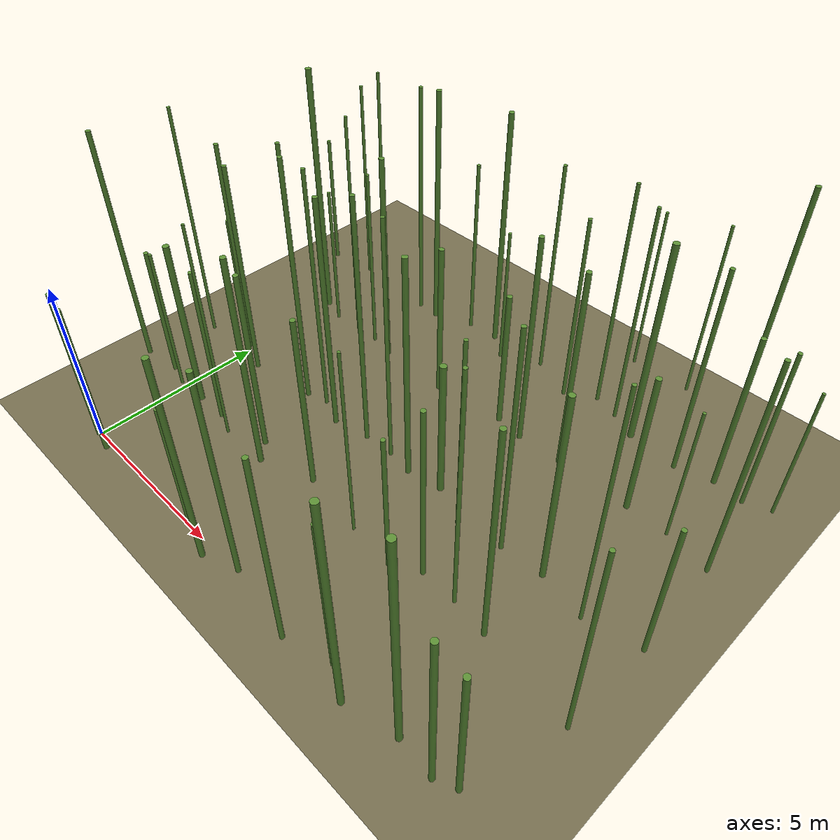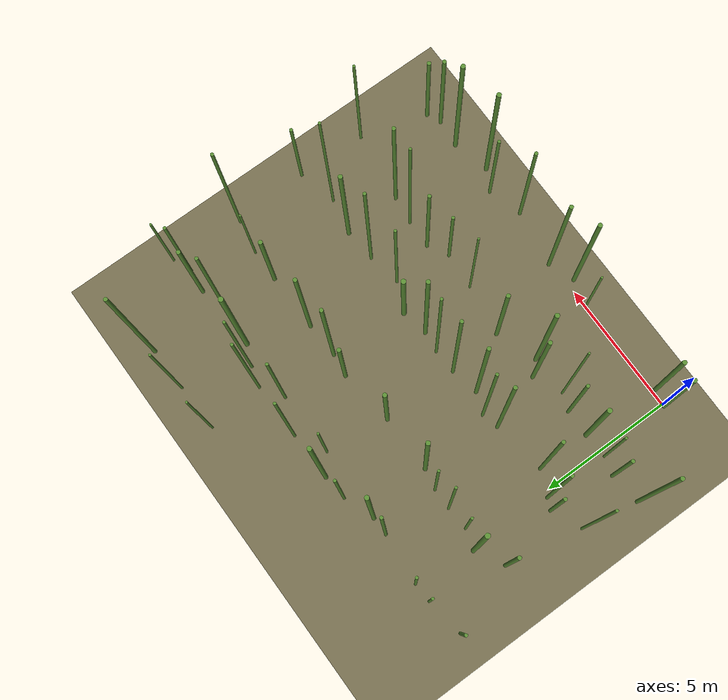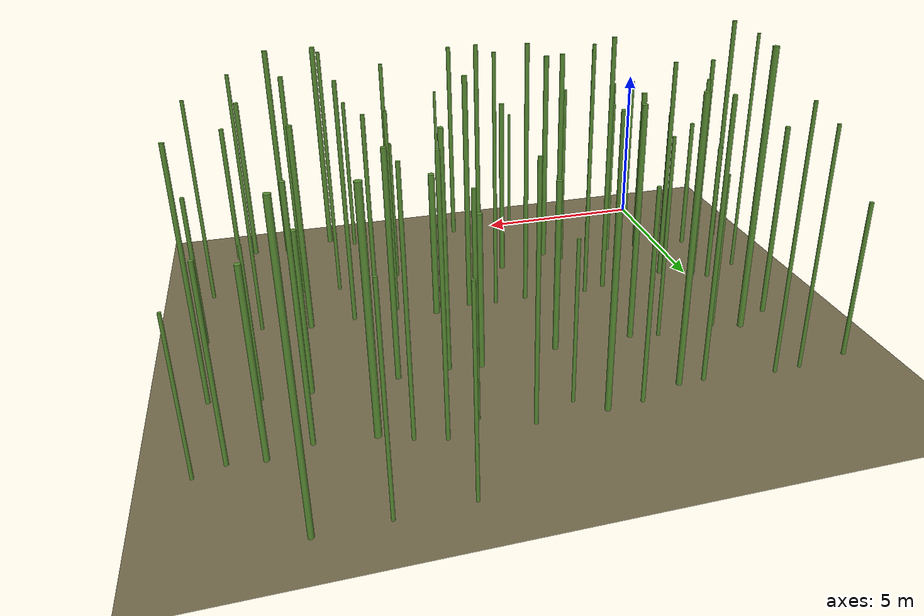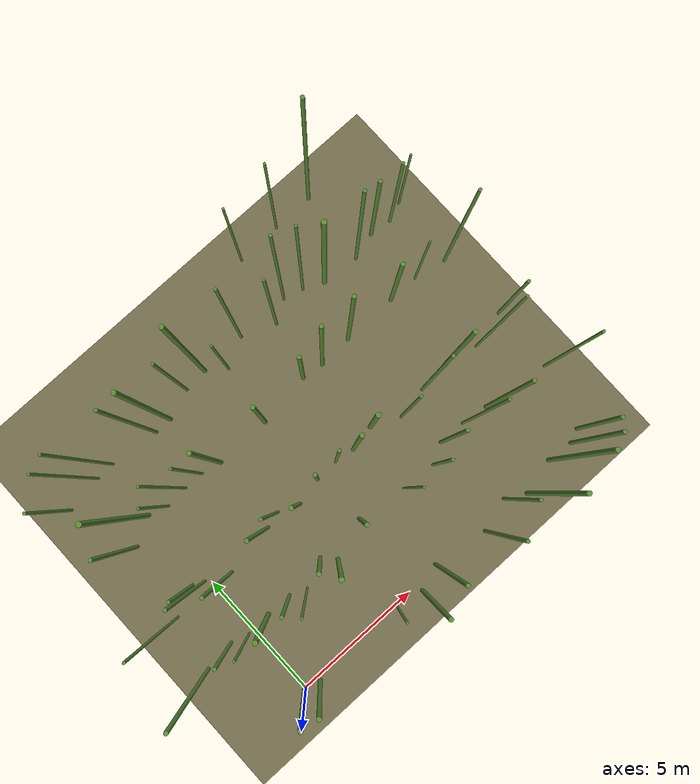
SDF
<sdf version="1.9">
 <world name="bamboo_field">
  <model name="ground_plane">
   <static>true</static>
   <link name="link">
    <collision name="collision">
     <geometry><plane><normal>0 0 1</normal><size>80.0 80.0</size></plane></geometry>
    </collision>
    <visual name="visual">
     <geometry><plane><normal>0 0 1</normal><size>80.0 80.0</size></plane></geometry>
     <material><diffuse>0.45 0.42 0.30 1</diffuse></material>
    </visual>
   </link>
  </model>
  <model name="bamboo_1041">
   <static>true</static>
   <pose>-0.07325884887953937 -0.017494516571116392 2.418458960668999 0 0 0</pose>
   <link name="link">
    <collision name="collision">
     <geometry>
      <cylinder><radius>0.08295060151324246</radius><length>4.836917921337998</length></cylinder>
     </geometry>
    </collision>
    <visual name="visual">
     <geometry>
      <cylinder><radius>0.08295060151324246</radius><length>4.836917921337998</length></cylinder>
     </geometry>
     <material><diffuse>0.35 0.55 0.20 1</diffuse><specular>0.1 0.1 0.1 1</specular></material>
    </visual>
   </link>
  </model>
  <model name="bamboo_1042">
   <static>true</static>
   <pose>0.5576627941543283 -0.14791450598957973 2.3818289054348103 0 0 0</pose>
   <link name="link">
    <collision name="collision">
     <geometry>
      <cylinder><radius>0.07950057683087235</radius><length>4.763657810869621</length></cylinder>
     </geometry>
    </collision>
    <visual name="visual">
     <geometry>
      <cylinder><radius>0.07950057683087235</radius><length>4.763657810869621</length></cylinder>
     </geometry>
     <material><diffuse>0.35 0.55 0.20 1</diffuse><specular>0.1 0.1 0.1 1</specular></material>
    </visual>
   </link>
  </model>
  <model name="bamboo_1044">
   <static>true</static>
   <pose>4.353156460938349 0.026852575439004767 2.015748561958425 0 0 0</pose>
   <link name="link">
    <collision name="collision">
     <geometry>
      <cylinder><radius>0.04254610901096838</radius><length>4.03149712391685</length></cylinder>
     </geometry>
    </collision>
    <visual name="visual">
     <geometry>
      <cylinder><radius>0.04254610901096838</radius><length>4.03149712391685</length></cylinder>
     </geometry>
     <material><diffuse>0.35 0.55 0.20 1</diffuse><specular>0.1 0.1 0.1 1</specular></material>
    </visual>
   </link>
  </model>
  <model name="bamboo_1045">
   <static>true</static>
   <pose>5.391677487551557 -0.2687702224401212 3.1916791011553785 0 0 0</pose>
   <link name="link">
    <collision name="collision">
     <geometry>
      <cylinder><radius>0.07685391566852527</radius><length>6.383358202310757</length></cylinder>
     </geometry>
    </collision>
    <visual name="visual">
     <geometry>
      <cylinder><radius>0.07685391566852527</radius><length>6.383358202310757</length></cylinder>
     </geometry>
     <material><diffuse>0.35 0.55 0.20 1</diffuse><specular>0.1 0.1 0.1 1</specular></material>
    </visual>
   </link>
  </model>
  <model name="bamboo_1046">
   <static>true</static>
   <pose>6.373730467125945 0.09937007107931528 3.2229905863893173 0 0 0</pose>
   <link name="link">
    <collision name="collision">
     <geometry>
      <cylinder><radius>0.06955196377806894</radius><length>6.445981172778635</length></cylinder>
     </geometry>
    </collision>
    <visual name="visual">
     <geometry>
      <cylinder><radius>0.06955196377806894</radius><length>6.445981172778635</length></cylinder>
     </geometry>
     <material><diffuse>0.35 0.55 0.20 1</diffuse><specular>0.1 0.1 0.1 1</specular></material>
    </visual>
   </link>
  </model>
  <model name="bamboo_1048">
   <static>true</static>
   <pose>8.508249535060527 -0.22957751543858623 2.989577600698124 0 0 0</pose>
   <link name="link">
    <collision name="collision">
     <geometry>
      <cylinder><radius>0.06366689857726571</radius><length>5.979155201396248</length></cylinder>
     </geometry>
    </collision>
    <visual name="visual">
     <geometry>
      <cylinder><radius>0.06366689857726571</radius><length>5.979155201396248</length></cylinder>
     </geometry>
     <material><diffuse>0.35 0.55 0.20 1</diffuse><specular>0.1 0.1 0.1 1</specular></material>
    </visual>
   </link>
  </model>
  <model name="bamboo_1049">
   <static>true</static>
   <pose>9.7989761321015 0.16403671312035706 2.4642062262838476 0 0 0</pose>
   <link name="link">
    <collision name="collision">
     <geometry>
      <cylinder><radius>0.05719236949015807</radius><length>4.928412452567695</length></cylinder>
     </geometry>
    </collision>
    <visual name="visual">
     <geometry>
      <cylinder><radius>0.05719236949015807</radius><length>4.928412452567695</length></cylinder>
     </geometry>
     <material><diffuse>0.35 0.55 0.20 1</diffuse><specular>0.1 0.1 0.1 1</specular></material>
    </visual>
   </link>
  </model>
  <model name="bamboo_1050">
   <static>true</static>
   <pose>10.572656686994772 -0.26693656541245603 3.3139162729452147 0 0 0</pose>
   <link name="link">
    <collision name="collision">
     <geometry>
      <cylinder><radius>0.08212335672795741</radius><length>6.6278325458904295</length></cylinder>
     </geometry>
    </collision>
    <visual name="visual">
     <geometry>
      <cylinder><radius>0.08212335672795741</radius><length>6.6278325458904295</length></cylinder>
     </geometry>
     <material><diffuse>0.35 0.55 0.20 1</diffuse><specular>0.1 0.1 0.1 1</specular></material>
    </visual>
   </link>
  </model>
  <model name="bamboo_1051">
   <static>true</static>
   <pose>11.97960900696033 0.08486846979519458 3.346214587278667 0 0 0</pose>
   <link name="link">
    <collision name="collision">
     <geometry>
      <cylinder><radius>0.08165403728976733</radius><length>6.692429174557334</length></cylinder>
     </geometry>
    </collision>
    <visual name="visual">
     <geometry>
      <cylinder><radius>0.08165403728976733</radius><length>6.692429174557334</length></cylinder>
     </geometry>
     <material><diffuse>0.35 0.55 0.20 1</diffuse><specular>0.1 0.1 0.1 1</specular></material>
    </visual>
   </link>
  </model>
  <model name="bamboo_1052">
   <static>true</static>
   <pose>13.009779799275723 -0.00537287814808568 2.5649144305392735 0 0 0</pose>
   <link name="link">
    <collision name="collision">
     <geometry>
      <cylinder><radius>0.07109211892158113</radius><length>5.129828861078547</length></cylinder>
     </geometry>
    </collision>
    <visual name="visual">
     <geometry>
      <cylinder><radius>0.07109211892158113</radius><length>5.129828861078547</length></cylinder>
     </geometry>
     <material><diffuse>0.35 0.55 0.20 1</diffuse><specular>0.1 0.1 0.1 1</specular></material>
    </visual>
   </link>
  </model>
  <model name="bamboo_1053">
   <static>true</static>
   <pose>13.528129462958901 0.2233246699700342 2.20180745115105 0 0 0</pose>
   <link name="link">
    <collision name="collision">
     <geometry><cylinder><radius>0.07028745036281113</radius><length>4.4036149023021</length></cylinder></geometry>
    </collision>
    <visual name="visual">
     <geometry><cylinder><radius>0.07028745036281113</radius><length>4.4036149023021</length></cylinder></geometry>
     <material><diffuse>0.35 0.55 0.20 1</diffuse><specular>0.1 0.1 0.1 1</specular></material>
    </visual>
   </link>
  </model>
  <model name="bamboo_1107">
   <static>true</static>
   <pose>-2.1268443546682536 2.812205663147675 3.6789754432439477 0 0 0</pose>
   <link name="link">
    <collision name="collision">
     <geometry>
      <cylinder><radius>0.06989338757503366</radius><length>7.357950886487895</length></cylinder>
     </geometry>
    </collision>
    <visual name="visual">
     <geometry>
      <cylinder><radius>0.06989338757503366</radius><length>7.357950886487895</length></cylinder>
     </geometry>
     <material><diffuse>0.35 0.55 0.20 1</diffuse><specular>0.1 0.1 0.1 1</specular></material>
    </visual>
   </link>
  </model>
  <model name="bamboo_1108">
   <static>true</static>
   <pose>-0.9226409765608934 2.9603702234898646 2.0909694606276794 0 0 0</pose>
   <link name="link">
    <collision name="collision">
     <geometry>
      <cylinder><radius>0.06551642108012411</radius><length>4.181938921255359</length></cylinder>
     </geometry>
    </collision>
    <visual name="visual">
     <geometry>
      <cylinder><radius>0.06551642108012411</radius><length>4.181938921255359</length></cylinder>
     </geometry>
     <material><diffuse>0.35 0.55 0.20 1</diffuse><specular>0.1 0.1 0.1 1</specular></material>
    </visual>
   </link>
  </model>
  <model name="bamboo_1109">
   <static>true</static>
   <pose>-0.23027834201236036 2.761833927791586 2.2793005365889334 0 0 0</pose>
   <link name="link">
    <collision name="collision">
     <geometry>
      <cylinder><radius>0.04614884824696858</radius><length>4.558601073177867</length></cylinder>
     </geometry>
    </collision>
    <visual name="visual">
     <geometry>
      <cylinder><radius>0.04614884824696858</radius><length>4.558601073177867</length></cylinder>
     </geometry>
     <material><diffuse>0.35 0.55 0.20 1</diffuse><specular>0.1 0.1 0.1 1</specular></material>
    </visual>
   </link>
  </model>
  <model name="bamboo_1110">
   <static>true</static>
   <pose>0.7304419709328203 2.806057798350797 2.636607883631164 0 0 0</pose>
   <link name="link">
    <collision name="collision">
     <geometry>
      <cylinder><radius>0.08787085868494829</radius><length>5.273215767262328</length></cylinder>
     </geometry>
    </collision>
    <visual name="visual">
     <geometry>
      <cylinder><radius>0.08787085868494829</radius><length>5.273215767262328</length></cylinder>
     </geometry>
     <material><diffuse>0.35 0.55 0.20 1</diffuse><specular>0.1 0.1 0.1 1</specular></material>
    </visual>
   </link>
  </model>
  <model name="bamboo_1111">
   <static>true</static>
   <pose>1.7456308501188615 2.805353982255935 2.4918565699797424 0 0 0</pose>
   <link name="link">
    <collision name="collision">
     <geometry>
      <cylinder><radius>0.06263590405621124</radius><length>4.983713139959485</length></cylinder>
     </geometry>
    </collision>
    <visual name="visual">
     <geometry>
      <cylinder><radius>0.06263590405621124</radius><length>4.983713139959485</length></cylinder>
     </geometry>
     <material><diffuse>0.35 0.55 0.20 1</diffuse><specular>0.1 0.1 0.1 1</specular></material>
    </visual>
   </link>
  </model>
  <model name="bamboo_1112">
   <static>true</static>
   <pose>2.3939455280728112 2.567646378374531 3.3836901207823415 0 0 0</pose>
   <link name="link">
    <collision name="collision">
     <geometry>
      <cylinder><radius>0.04079373080805623</radius><length>6.767380241564683</length></cylinder>
     </geometry>
    </collision>
    <visual name="visual">
     <geometry>
      <cylinder><radius>0.04079373080805623</radius><length>6.767380241564683</length></cylinder>
     </geometry>
     <material><diffuse>0.35 0.55 0.20 1</diffuse><specular>0.1 0.1 0.1 1</specular></material>
    </visual>
   </link>
  </model>
  <model name="bamboo_1113">
   <static>true</static>
   <pose>3.4587345278066923 3.0585228914692317 2.826326065596799 0 0 0</pose>
   <link name="link">
    <collision name="collision">
     <geometry>
      <cylinder><radius>0.07363532020655872</radius><length>5.652652131193598</length></cylinder>
     </geometry>
    </collision>
    <visual name="visual">
     <geometry>
      <cylinder><radius>0.07363532020655872</radius><length>5.652652131193598</length></cylinder>
     </geometry>
     <material><diffuse>0.35 0.55 0.20 1</diffuse><specular>0.1 0.1 0.1 1</specular></material>
    </visual>
   </link>
  </model>
  <model name="bamboo_1114">
   <static>true</static>
   <pose>3.89129908177253 2.5878763833009284 3.2981945522318252 0 0 0</pose>
   <link name="link">
    <collision name="collision">
     <geometry>
      <cylinder><radius>0.07936526174721131</radius><length>6.5963891044636505</length></cylinder>
     </geometry>
    </collision>
    <visual name="visual">
     <geometry>
      <cylinder><radius>0.07936526174721131</radius><length>6.5963891044636505</length></cylinder>
     </geometry>
     <material><diffuse>0.35 0.55 0.20 1</diffuse><specular>0.1 0.1 0.1 1</specular></material>
    </visual>
   </link>
  </model>
  <model name="bamboo_1115">
   <static>true</static>
   <pose>5.438813319331607 3.1454399034949003 2.7059894647008034 0 0 0</pose>
   <link name="link">
    <collision name="collision">
     <geometry>
      <cylinder><radius>0.07361229565866872</radius><length>5.411978929401607</length></cylinder>
     </geometry>
    </collision>
    <visual name="visual">
     <geometry>
      <cylinder><radius>0.07361229565866872</radius><length>5.411978929401607</length></cylinder>
     </geometry>
     <material><diffuse>0.35 0.55 0.20 1</diffuse><specular>0.1 0.1 0.1 1</specular></material>
    </visual>
   </link>
  </model>
  <model name="bamboo_1116">
   <static>true</static>
   <pose>7.375612574725637 2.8774174786602074 2.9253850634467695 0 0 0</pose>
   <link name="link">
    <collision name="collision">
     <geometry>
      <cylinder><radius>0.040421568797813306</radius><length>5.850770126893539</length></cylinder>
     </geometry>
    </collision>
    <visual name="visual">
     <geometry>
      <cylinder><radius>0.040421568797813306</radius><length>5.850770126893539</length></cylinder>
     </geometry>
     <material><diffuse>0.35 0.55 0.20 1</diffuse><specular>0.1 0.1 0.1 1</specular></material>
    </visual>
   </link>
  </model>
  <model name="bamboo_1117">
   <static>true</static>
   <pose>8.750711075663244 2.778438091669957 2.179933038596523 0 0 0</pose>
   <link name="link">
    <collision name="collision">
     <geometry>
      <cylinder><radius>0.057891050946530576</radius><length>4.359866077193046</length></cylinder>
     </geometry>
    </collision>
    <visual name="visual">
     <geometry>
      <cylinder><radius>0.057891050946530576</radius><length>4.359866077193046</length></cylinder>
     </geometry>
     <material><diffuse>0.35 0.55 0.20 1</diffuse><specular>0.1 0.1 0.1 1</specular></material>
    </visual>
   </link>
  </model>
  <model name="bamboo_1118">
   <static>true</static>
   <pose>9.504954442052071 3.1993684320117577 2.7259983574866657 0 0 0</pose>
   <link name="link">
    <collision name="collision">
     <geometry>
      <cylinder><radius>0.06469043357942122</radius><length>5.4519967149733315</length></cylinder>
     </geometry>
    </collision>
    <visual name="visual">
     <geometry>
      <cylinder><radius>0.06469043357942122</radius><length>5.4519967149733315</length></cylinder>
     </geometry>
     <material><diffuse>0.35 0.55 0.20 1</diffuse><specular>0.1 0.1 0.1 1</specular></material>
    </visual>
   </link>
  </model>
  <model name="bamboo_1119">
   <static>true</static>
   <pose>10.568472519746598 3.1751544816855377 3.6422469413047445 0 0 0</pose>
   <link name="link">
    <collision name="collision">
     <geometry>
      <cylinder><radius>0.04980433970103544</radius><length>7.284493882609489</length></cylinder>
     </geometry>
    </collision>
    <visual name="visual">
     <geometry>
      <cylinder><radius>0.04980433970103544</radius><length>7.284493882609489</length></cylinder>
     </geometry>
     <material><diffuse>0.35 0.55 0.20 1</diffuse><specular>0.1 0.1 0.1 1</specular></material>
    </visual>
   </link>
  </model>
  <model name="bamboo_1120">
   <static>true</static>
   <pose>11.614848020105168 3.0438816399036943 3.3196768423738305 0 0 0</pose>
   <link name="link">
    <collision name="collision">
     <geometry>
      <cylinder><radius>0.06758925936884069</radius><length>6.639353684747661</length></cylinder>
     </geometry>
    </collision>
    <visual name="visual">
     <geometry>
      <cylinder><radius>0.06758925936884069</radius><length>6.639353684747661</length></cylinder>
     </geometry>
     <material><diffuse>0.35 0.55 0.20 1</diffuse><specular>0.1 0.1 0.1 1</specular></material>
    </visual>
   </link>
  </model>
  <model name="bamboo_1121">
   <static>true</static>
   <pose>14.247634426410102 2.7005092023318573 3.0461599190369077 0 0 0</pose>
   <link name="link">
    <collision name="collision">
     <geometry>
      <cylinder><radius>0.051398258760945156</radius><length>6.0923198380738155</length></cylinder>
     </geometry>
    </collision>
    <visual name="visual">
     <geometry>
      <cylinder><radius>0.051398258760945156</radius><length>6.0923198380738155</length></cylinder>
     </geometry>
     <material><diffuse>0.35 0.55 0.20 1</diffuse><specular>0.1 0.1 0.1 1</specular></material>
    </visual>
   </link>
  </model>
  <model name="bamboo_1177">
   <static>true</static>
   <pose>-1.7331140203171735 4.9094036081101144 3.7194146947534747 0 0 0</pose>
   <link name="link">
    <collision name="collision">
     <geometry>
      <cylinder><radius>0.04859128584219965</radius><length>7.4388293895069495</length></cylinder>
     </geometry>
    </collision>
    <visual name="visual">
     <geometry>
      <cylinder><radius>0.04859128584219965</radius><length>7.4388293895069495</length></cylinder>
     </geometry>
     <material><diffuse>0.35 0.55 0.20 1</diffuse><specular>0.1 0.1 0.1 1</specular></material>
    </visual>
   </link>
  </model>
  <model name="bamboo_1178">
   <static>true</static>
   <pose>-0.6078515690678674 5.40546843534232 2.137525981500639 0 0 0</pose>
   <link name="link">
    <collision name="collision">
     <geometry>
      <cylinder><radius>0.06391255711881173</radius><length>4.275051963001278</length></cylinder>
     </geometry>
    </collision>
    <visual name="visual">
     <geometry>
      <cylinder><radius>0.06391255711881173</radius><length>4.275051963001278</length></cylinder>
     </geometry>
     <material><diffuse>0.35 0.55 0.20 1</diffuse><specular>0.1 0.1 0.1 1</specular></material>
    </visual>
   </link>
  </model>
  <model name="bamboo_1179">
   <static>true</static>
   <pose>-0.1921003746592177 5.222075403670887 3.419343228113542 0 0 0</pose>
   <link name="link">
    <collision name="collision">
     <geometry>
      <cylinder><radius>0.06161003381680552</radius><length>6.838686456227084</length></cylinder>
     </geometry>
    </collision>
    <visual name="visual">
     <geometry>
      <cylinder><radius>0.06161003381680552</radius><length>6.838686456227084</length></cylinder>
     </geometry>
     <material><diffuse>0.35 0.55 0.20 1</diffuse><specular>0.1 0.1 0.1 1</specular></material>
    </visual>
   </link>
  </model>
  <model name="bamboo_1180">
   <static>true</static>
   <pose>0.7440239945013938 4.8046891057236865 3.3696718582355443 0 0 0</pose>
   <link name="link">
    <collision name="collision">
     <geometry>
      <cylinder><radius>0.06512375105797202</radius><length>6.7393437164710885</length></cylinder>
     </geometry>
    </collision>
    <visual name="visual">
     <geometry>
      <cylinder><radius>0.06512375105797202</radius><length>6.7393437164710885</length></cylinder>
     </geometry>
     <material><diffuse>0.35 0.55 0.20 1</diffuse><specular>0.1 0.1 0.1 1</specular></material>
    </visual>
   </link>
  </model>
  <model name="bamboo_1181">
   <static>true</static>
   <pose>2.7834544453186747 5.121621981611193 3.820605077881054 0 0 0</pose>
   <link name="link">
    <collision name="collision">
     <geometry>
      <cylinder><radius>0.06629282524022886</radius><length>7.641210155762108</length></cylinder>
     </geometry>
    </collision>
    <visual name="visual">
     <geometry>
      <cylinder><radius>0.06629282524022886</radius><length>7.641210155762108</length></cylinder>
     </geometry>
     <material><diffuse>0.35 0.55 0.20 1</diffuse><specular>0.1 0.1 0.1 1</specular></material>
    </visual>
   </link>
  </model>
  <model name="bamboo_1182">
   <static>true</static>
   <pose>3.417854609019182 5.289700367396124 3.7619881468846774 0 0 0</pose>
   <link name="link">
    <collision name="collision">
     <geometry>
      <cylinder><radius>0.05439558924969253</radius><length>7.523976293769355</length></cylinder>
     </geometry>
    </collision>
    <visual name="visual">
     <geometry>
      <cylinder><radius>0.05439558924969253</radius><length>7.523976293769355</length></cylinder>
     </geometry>
     <material><diffuse>0.35 0.55 0.20 1</diffuse><specular>0.1 0.1 0.1 1</specular></material>
    </visual>
   </link>
  </model>
  <model name="bamboo_1183">
   <static>true</static>
   <pose>4.205687546891058 4.973873161886111 3.6199695296562298 0 0 0</pose>
   <link name="link">
    <collision name="collision">
     <geometry>
      <cylinder><radius>0.07065137558558196</radius><length>7.2399390593124595</length></cylinder>
     </geometry>
    </collision>
    <visual name="visual">
     <geometry>
      <cylinder><radius>0.07065137558558196</radius><length>7.2399390593124595</length></cylinder>
     </geometry>
     <material><diffuse>0.35 0.55 0.20 1</diffuse><specular>0.1 0.1 0.1 1</specular></material>
    </visual>
   </link>
  </model>
  <model name="bamboo_1184">
   <static>true</static>
   <pose>5.271496017032373 5.197509475720668 3.8216661909085516 0 0 0</pose>
   <link name="link">
    <collision name="collision">
     <geometry>
      <cylinder><radius>0.06289140760327316</radius><length>7.643332381817103</length></cylinder>
     </geometry>
    </collision>
    <visual name="visual">
     <geometry>
      <cylinder><radius>0.06289140760327316</radius><length>7.643332381817103</length></cylinder>
     </geometry>
     <material><diffuse>0.35 0.55 0.20 1</diffuse><specular>0.1 0.1 0.1 1</specular></material>
    </visual>
   </link>
  </model>
  <model name="bamboo_1185">
   <static>true</static>
   <pose>6.192148914750039 5.239137031877351 3.7410791837860975 0 0 0</pose>
   <link name="link">
    <collision name="collision">
     <geometry>
      <cylinder><radius>0.05198476287929036</radius><length>7.482158367572195</length></cylinder>
     </geometry>
    </collision>
    <visual name="visual">
     <geometry>
      <cylinder><radius>0.05198476287929036</radius><length>7.482158367572195</length></cylinder>
     </geometry>
     <material><diffuse>0.35 0.55 0.20 1</diffuse><specular>0.1 0.1 0.1 1</specular></material>
    </visual>
   </link>
  </model>
  <model name="bamboo_1186">
   <static>true</static>
   <pose>6.969339765313307 5.14492009364605 3.4448187783693482 0 0 0</pose>
   <link name="link">
    <collision name="collision">
     <geometry>
      <cylinder><radius>0.07490219962840444</radius><length>6.8896375567386965</length></cylinder>
     </geometry>
    </collision>
    <visual name="visual">
     <geometry>
      <cylinder><radius>0.07490219962840444</radius><length>6.8896375567386965</length></cylinder>
     </geometry>
     <material><diffuse>0.35 0.55 0.20 1</diffuse><specular>0.1 0.1 0.1 1</specular></material>
    </visual>
   </link>
  </model>
  <model name="bamboo_1187">
   <static>true</static>
   <pose>7.9878744384803655 5.336056145790836 2.153067272236896 0 0 0</pose>
   <link name="link">
    <collision name="collision">
     <geometry>
      <cylinder><radius>0.08976581907597633</radius><length>4.306134544473792</length></cylinder>
     </geometry>
    </collision>
    <visual name="visual">
     <geometry>
      <cylinder><radius>0.08976581907597633</radius><length>4.306134544473792</length></cylinder>
     </geometry>
     <material><diffuse>0.35 0.55 0.20 1</diffuse><specular>0.1 0.1 0.1 1</specular></material>
    </visual>
   </link>
  </model>
  <model name="bamboo_1188">
   <static>true</static>
   <pose>9.06813974091243 4.85071563400352 3.0121291435455557 0 0 0</pose>
   <link name="link">
    <collision name="collision">
     <geometry>
      <cylinder><radius>0.05263833090937588</radius><length>6.024258287091111</length></cylinder>
     </geometry>
    </collision>
    <visual name="visual">
     <geometry>
      <cylinder><radius>0.05263833090937588</radius><length>6.024258287091111</length></cylinder>
     </geometry>
     <material><diffuse>0.35 0.55 0.20 1</diffuse><specular>0.1 0.1 0.1 1</specular></material>
    </visual>
   </link>
  </model>
  <model name="bamboo_1189">
   <static>true</static>
   <pose>10.321457987274258 5.0771508190726315 3.491914874305454 0 0 0</pose>
   <link name="link">
    <collision name="collision">
     <geometry>
      <cylinder><radius>0.059057778397074975</radius><length>6.983829748610908</length></cylinder>
     </geometry>
    </collision>
    <visual name="visual">
     <geometry>
      <cylinder><radius>0.059057778397074975</radius><length>6.983829748610908</length></cylinder>
     </geometry>
     <material><diffuse>0.35 0.55 0.20 1</diffuse><specular>0.1 0.1 0.1 1</specular></material>
    </visual>
   </link>
  </model>
  <model name="bamboo_1190">
   <static>true</static>
   <pose>11.541332540481832 5.183378767838636 2.969518474658683 0 0 0</pose>
   <link name="link">
    <collision name="collision">
     <geometry>
      <cylinder><radius>0.07743380139181225</radius><length>5.939036949317366</length></cylinder>
     </geometry>
    </collision>
    <visual name="visual">
     <geometry>
      <cylinder><radius>0.07743380139181225</radius><length>5.939036949317366</length></cylinder>
     </geometry>
     <material><diffuse>0.35 0.55 0.20 1</diffuse><specular>0.1 0.1 0.1 1</specular></material>
    </visual>
   </link>
  </model>
  <model name="bamboo_1191">
   <static>true</static>
   <pose>12.879577737424857 4.918891156537626 3.640853379355995 0 0 0</pose>
   <link name="link">
    <collision name="collision">
     <geometry>
      <cylinder><radius>0.047012788009191946</radius><length>7.28170675871199</length></cylinder>
     </geometry>
    </collision>
    <visual name="visual">
     <geometry>
      <cylinder><radius>0.047012788009191946</radius><length>7.28170675871199</length></cylinder>
     </geometry>
     <material><diffuse>0.35 0.55 0.20 1</diffuse><specular>0.1 0.1 0.1 1</specular></material>
    </visual>
   </link>
  </model>
  <model name="bamboo_1192">
   <static>true</static>
   <pose>14.349880609690336 5.273646988824769 2.1551705996899626 0 0 0</pose>
   <link name="link">
    <collision name="collision">
     <geometry>
      <cylinder><radius>0.05954247510748109</radius><length>4.310341199379925</length></cylinder>
     </geometry>
    </collision>
    <visual name="visual">
     <geometry>
      <cylinder><radius>0.05954247510748109</radius><length>4.310341199379925</length></cylinder>
     </geometry>
     <material><diffuse>0.35 0.55 0.20 1</diffuse><specular>0.1 0.1 0.1 1</specular></material>
    </visual>
   </link>
  </model>
  <model name="bamboo_1244">
   <static>true</static>
   <pose>-1.1739574665004984 7.770819248247729 2.800330381679604 0 0 0</pose>
   <link name="link">
    <collision name="collision">
     <geometry>
      <cylinder><radius>0.07033815081586545</radius><length>5.600660763359208</length></cylinder>
     </geometry>
    </collision>
    <visual name="visual">
     <geometry>
      <cylinder><radius>0.07033815081586545</radius><length>5.600660763359208</length></cylinder>
     </geometry>
     <material><diffuse>0.35 0.55 0.20 1</diffuse><specular>0.1 0.1 0.1 1</specular></material>
    </visual>
   </link>
  </model>
  <model name="bamboo_1245">
   <static>true</static>
   <pose>-0.13163559595362528 8.347502719796921 3.973742926990077 0 0 0</pose>
   <link name="link">
    <collision name="collision">
     <geometry>
      <cylinder><radius>0.08654222521041405</radius><length>7.947485853980154</length></cylinder>
     </geometry>
    </collision>
    <visual name="visual">
     <geometry>
      <cylinder><radius>0.08654222521041405</radius><length>7.947485853980154</length></cylinder>
     </geometry>
     <material><diffuse>0.35 0.55 0.20 1</diffuse><specular>0.1 0.1 0.1 1</specular></material>
    </visual>
   </link>
  </model>
  <model name="bamboo_1246">
   <static>true</static>
   <pose>0.6261436012747573 8.114185623854755 2.2863228897729324 0 0 0</pose>
   <link name="link">
    <collision name="collision">
     <geometry>
      <cylinder><radius>0.04975384775994046</radius><length>4.572645779545865</length></cylinder>
     </geometry>
    </collision>
    <visual name="visual">
     <geometry>
      <cylinder><radius>0.04975384775994046</radius><length>4.572645779545865</length></cylinder>
     </geometry>
     <material><diffuse>0.35 0.55 0.20 1</diffuse><specular>0.1 0.1 0.1 1</specular></material>
    </visual>
   </link>
  </model>
  <model name="bamboo_1247">
   <static>true</static>
   <pose>1.5157703587471407 8.18500429877682 3.5936415208442494 0 0 0</pose>
   <link name="link">
    <collision name="collision">
     <geometry>
      <cylinder><radius>0.04639306772422978</radius><length>7.187283041688499</length></cylinder>
     </geometry>
    </collision>
    <visual name="visual">
     <geometry>
      <cylinder><radius>0.04639306772422978</radius><length>7.187283041688499</length></cylinder>
     </geometry>
     <material><diffuse>0.35 0.55 0.20 1</diffuse><specular>0.1 0.1 0.1 1</specular></material>
    </visual>
   </link>
  </model>
  <model name="bamboo_1248">
   <static>true</static>
   <pose>2.3053002586256275 8.177710263677776 2.8925734006621124 0 0 0</pose>
   <link name="link">
    <collision name="collision">
     <geometry>
      <cylinder><radius>0.04840264256909809</radius><length>5.785146801324225</length></cylinder>
     </geometry>
    </collision>
    <visual name="visual">
     <geometry>
      <cylinder><radius>0.04840264256909809</radius><length>5.785146801324225</length></cylinder>
     </geometry>
     <material><diffuse>0.35 0.55 0.20 1</diffuse><specular>0.1 0.1 0.1 1</specular></material>
    </visual>
   </link>
  </model>
  <model name="bamboo_1249">
   <static>true</static>
   <pose>3.083288125725071 8.018286171182972 3.3194902047501356 0 0 0</pose>
   <link name="link">
    <collision name="collision">
     <geometry>
      <cylinder><radius>0.0776626260370798</radius><length>6.638980409500271</length></cylinder>
     </geometry>
    </collision>
    <visual name="visual">
     <geometry>
      <cylinder><radius>0.0776626260370798</radius><length>6.638980409500271</length></cylinder>
     </geometry>
     <material><diffuse>0.35 0.55 0.20 1</diffuse><specular>0.1 0.1 0.1 1</specular></material>
    </visual>
   </link>
  </model>
  <model name="bamboo_1250">
   <static>true</static>
   <pose>5.258918840727288 8.04727240890784 2.44075206993781 0 0 0</pose>
   <link name="link">
    <collision name="collision">
     <geometry>
      <cylinder><radius>0.07831544119132974</radius><length>4.88150413987562</length></cylinder>
     </geometry>
    </collision>
    <visual name="visual">
     <geometry>
      <cylinder><radius>0.07831544119132974</radius><length>4.88150413987562</length></cylinder>
     </geometry>
     <material><diffuse>0.35 0.55 0.20 1</diffuse><specular>0.1 0.1 0.1 1</specular></material>
    </visual>
   </link>
  </model>
  <model name="bamboo_1251">
   <static>true</static>
   <pose>7.376134971104214 8.324219211275196 2.180883508854217 0 0 0</pose>
   <link name="link">
    <collision name="collision">
     <geometry>
      <cylinder><radius>0.07627072032241478</radius><length>4.361767017708434</length></cylinder>
     </geometry>
    </collision>
    <visual name="visual">
     <geometry>
      <cylinder><radius>0.07627072032241478</radius><length>4.361767017708434</length></cylinder>
     </geometry>
     <material><diffuse>0.35 0.55 0.20 1</diffuse><specular>0.1 0.1 0.1 1</specular></material>
    </visual>
   </link>
  </model>
  <model name="bamboo_1252">
   <static>true</static>
   <pose>8.228504995089011 8.216070700248494 3.2879730812195804 0 0 0</pose>
   <link name="link">
    <collision name="collision">
     <geometry>
      <cylinder><radius>0.07003397102082781</radius><length>6.575946162439161</length></cylinder>
     </geometry>
    </collision>
    <visual name="visual">
     <geometry>
      <cylinder><radius>0.07003397102082781</radius><length>6.575946162439161</length></cylinder>
     </geometry>
     <material><diffuse>0.35 0.55 0.20 1</diffuse><specular>0.1 0.1 0.1 1</specular></material>
    </visual>
   </link>
  </model>
  <model name="bamboo_1253">
   <static>true</static>
   <pose>9.55829747271736 8.279774023726596 3.1237998897768255 0 0 0</pose>
   <link name="link">
    <collision name="collision">
     <geometry>
      <cylinder><radius>0.07210511013309728</radius><length>6.247599779553651</length></cylinder>
     </geometry>
    </collision>
    <visual name="visual">
     <geometry>
      <cylinder><radius>0.07210511013309728</radius><length>6.247599779553651</length></cylinder>
     </geometry>
     <material><diffuse>0.35 0.55 0.20 1</diffuse><specular>0.1 0.1 0.1 1</specular></material>
    </visual>
   </link>
  </model>
  <model name="bamboo_1254">
   <static>true</static>
   <pose>11.737139640783187 8.311192002698817 2.232212447715387 0 0 0</pose>
   <link name="link">
    <collision name="collision">
     <geometry>
      <cylinder><radius>0.07723088761493849</radius><length>4.464424895430774</length></cylinder>
     </geometry>
    </collision>
    <visual name="visual">
     <geometry>
      <cylinder><radius>0.07723088761493849</radius><length>4.464424895430774</length></cylinder>
     </geometry>
     <material><diffuse>0.35 0.55 0.20 1</diffuse><specular>0.1 0.1 0.1 1</specular></material>
    </visual>
   </link>
  </model>
  <model name="bamboo_1255">
   <static>true</static>
   <pose>12.936273298415854 8.30684380401929 2.12376987323254 0 0 0</pose>
   <link name="link">
    <collision name="collision">
     <geometry>
      <cylinder><radius>0.04008392457321246</radius><length>4.24753974646508</length></cylinder>
     </geometry>
    </collision>
    <visual name="visual">
     <geometry>
      <cylinder><radius>0.04008392457321246</radius><length>4.24753974646508</length></cylinder>
     </geometry>
     <material><diffuse>0.35 0.55 0.20 1</diffuse><specular>0.1 0.1 0.1 1</specular></material>
    </visual>
   </link>
  </model>
  <model name="bamboo_1256">
   <static>true</static>
   <pose>14.210886681269377 8.077686754012587 3.3586043407607846 0 0 0</pose>
   <link name="link">
    <collision name="collision">
     <geometry>
      <cylinder><radius>0.058251192121773265</radius><length>6.717208681521569</length></cylinder>
     </geometry>
    </collision>
    <visual name="visual">
     <geometry>
      <cylinder><radius>0.058251192121773265</radius><length>6.717208681521569</length></cylinder>
     </geometry>
     <material><diffuse>0.35 0.55 0.20 1</diffuse><specular>0.1 0.1 0.1 1</specular></material>
    </visual>
   </link>
  </model>
  <model name="bamboo_1311">
   <static>true</static>
   <pose>-2.0775631514259327 10.357445407754925 2.202675557595548 0 0 0</pose>
   <link name="link">
    <collision name="collision">
     <geometry>
      <cylinder><radius>0.057726616192185776</radius><length>4.405351115191096</length></cylinder>
     </geometry>
    </collision>
    <visual name="visual">
     <geometry>
      <cylinder><radius>0.057726616192185776</radius><length>4.405351115191096</length></cylinder>
     </geometry>
     <material><diffuse>0.35 0.55 0.20 1</diffuse><specular>0.1 0.1 0.1 1</specular></material>
    </visual>
   </link>
  </model>
  <model name="bamboo_1312">
   <static>true</static>
   <pose>-0.6084642726559422 10.574875940416371 3.31326689198814 0 0 0</pose>
   <link name="link">
    <collision name="collision">
     <geometry><cylinder><radius>0.0477815200274615</radius><length>6.62653378397628</length></cylinder></geometry>
    </collision>
    <visual name="visual">
     <geometry><cylinder><radius>0.0477815200274615</radius><length>6.62653378397628</length></cylinder></geometry>
     <material><diffuse>0.35 0.55 0.20 1</diffuse><specular>0.1 0.1 0.1 1</specular></material>
    </visual>
   </link>
  </model>
  <model name="bamboo_1313">
   <static>true</static>
   <pose>0.1290695403800502 10.605125210448561 3.623087708197261 0 0 0</pose>
   <link name="link">
    <collision name="collision">
     <geometry>
      <cylinder><radius>0.0491091020168466</radius><length>7.246175416394522</length></cylinder>
     </geometry>
    </collision>
    <visual name="visual">
     <geometry>
      <cylinder><radius>0.0491091020168466</radius><length>7.246175416394522</length></cylinder>
     </geometry>
     <material><diffuse>0.35 0.55 0.20 1</diffuse><specular>0.1 0.1 0.1 1</specular></material>
    </visual>
   </link>
  </model>
  <model name="bamboo_1314">
   <static>true</static>
   <pose>2.0691463732965376 10.430821710392548 3.741028140622667 0 0 0</pose>
   <link name="link">
    <collision name="collision">
     <geometry>
      <cylinder><radius>0.05796183730795095</radius><length>7.482056281245334</length></cylinder>
     </geometry>
    </collision>
    <visual name="visual">
     <geometry>
      <cylinder><radius>0.05796183730795095</radius><length>7.482056281245334</length></cylinder>
     </geometry>
     <material><diffuse>0.35 0.55 0.20 1</diffuse><specular>0.1 0.1 0.1 1</specular></material>
    </visual>
   </link>
  </model>
  <model name="bamboo_1315">
   <static>true</static>
   <pose>2.7585424144987067 10.437419109094106 3.801995620602467 0 0 0</pose>
   <link name="link">
    <collision name="collision">
     <geometry>
      <cylinder><radius>0.07719619934678582</radius><length>7.603991241204934</length></cylinder>
     </geometry>
    </collision>
    <visual name="visual">
     <geometry>
      <cylinder><radius>0.07719619934678582</radius><length>7.603991241204934</length></cylinder>
     </geometry>
     <material><diffuse>0.35 0.55 0.20 1</diffuse><specular>0.1 0.1 0.1 1</specular></material>
    </visual>
   </link>
  </model>
  <model name="bamboo_1316">
   <static>true</static>
   <pose>3.9231282288587406 10.857998822031524 2.842190645472226 0 0 0</pose>
   <link name="link">
    <collision name="collision">
     <geometry>
      <cylinder><radius>0.053289981007126085</radius><length>5.684381290944452</length></cylinder>
     </geometry>
    </collision>
    <visual name="visual">
     <geometry>
      <cylinder><radius>0.053289981007126085</radius><length>5.684381290944452</length></cylinder>
     </geometry>
     <material><diffuse>0.35 0.55 0.20 1</diffuse><specular>0.1 0.1 0.1 1</specular></material>
    </visual>
   </link>
  </model>
  <model name="bamboo_1317">
   <static>true</static>
   <pose>4.875071049052154 10.944617637707719 3.763533061740935 0 0 0</pose>
   <link name="link">
    <collision name="collision">
     <geometry>
      <cylinder><radius>0.07821963547927793</radius><length>7.52706612348187</length></cylinder>
     </geometry>
    </collision>
    <visual name="visual">
     <geometry>
      <cylinder><radius>0.07821963547927793</radius><length>7.52706612348187</length></cylinder>
     </geometry>
     <material><diffuse>0.35 0.55 0.20 1</diffuse><specular>0.1 0.1 0.1 1</specular></material>
    </visual>
   </link>
  </model>
  <model name="bamboo_1318">
   <static>true</static>
   <pose>5.575801751410236 10.407004154349986 2.215759169946804 0 0 0</pose>
   <link name="link">
    <collision name="collision">
     <geometry>
      <cylinder><radius>0.04548663920077629</radius><length>4.431518339893608</length></cylinder>
     </geometry>
    </collision>
    <visual name="visual">
     <geometry>
      <cylinder><radius>0.04548663920077629</radius><length>4.431518339893608</length></cylinder>
     </geometry>
     <material><diffuse>0.35 0.55 0.20 1</diffuse><specular>0.1 0.1 0.1 1</specular></material>
    </visual>
   </link>
  </model>
  <model name="bamboo_1319">
   <static>true</static>
   <pose>6.700494278003583 10.981631730947589 3.3566206370269622 0 0 0</pose>
   <link name="link">
    <collision name="collision">
     <geometry>
      <cylinder><radius>0.05182524675579363</radius><length>6.7132412740539245</length></cylinder>
     </geometry>
    </collision>
    <visual name="visual">
     <geometry>
      <cylinder><radius>0.05182524675579363</radius><length>6.7132412740539245</length></cylinder>
     </geometry>
     <material><diffuse>0.35 0.55 0.20 1</diffuse><specular>0.1 0.1 0.1 1</specular></material>
    </visual>
   </link>
  </model>
  <model name="bamboo_1320">
   <static>true</static>
   <pose>7.988598129699779 10.47154787164078 2.971858487764223 0 0 0</pose>
   <link name="link">
    <collision name="collision">
     <geometry>
      <cylinder><radius>0.054473331452244284</radius><length>5.943716975528446</length></cylinder>
     </geometry>
    </collision>
    <visual name="visual">
     <geometry>
      <cylinder><radius>0.054473331452244284</radius><length>5.943716975528446</length></cylinder>
     </geometry>
     <material><diffuse>0.35 0.55 0.20 1</diffuse><specular>0.1 0.1 0.1 1</specular></material>
    </visual>
   </link>
  </model>
  <model name="bamboo_1321">
   <static>true</static>
   <pose>8.821883255610302 10.994104704508192 3.5334552096578475 0 0 0</pose>
   <link name="link">
    <collision name="collision">
     <geometry>
      <cylinder><radius>0.05247333931965337</radius><length>7.066910419315695</length></cylinder>
     </geometry>
    </collision>
    <visual name="visual">
     <geometry>
      <cylinder><radius>0.05247333931965337</radius><length>7.066910419315695</length></cylinder>
     </geometry>
     <material><diffuse>0.35 0.55 0.20 1</diffuse><specular>0.1 0.1 0.1 1</specular></material>
    </visual>
   </link>
  </model>
  <model name="bamboo_1322">
   <static>true</static>
   <pose>9.58287496792871 10.788926230027167 3.4129217979716797 0 0 0</pose>
   <link name="link">
    <collision name="collision">
     <geometry>
      <cylinder><radius>0.04992062295745791</radius><length>6.825843595943359</length></cylinder>
     </geometry>
    </collision>
    <visual name="visual">
     <geometry>
      <cylinder><radius>0.04992062295745791</radius><length>6.825843595943359</length></cylinder>
     </geometry>
     <material><diffuse>0.35 0.55 0.20 1</diffuse><specular>0.1 0.1 0.1 1</specular></material>
    </visual>
   </link>
  </model>
  <model name="bamboo_1323">
   <static>true</static>
   <pose>10.360975851713622 10.458693696758559 3.182392397953688 0 0 0</pose>
   <link name="link">
    <collision name="collision">
     <geometry>
      <cylinder><radius>0.0896275834198564</radius><length>6.364784795907376</length></cylinder>
     </geometry>
    </collision>
    <visual name="visual">
     <geometry>
      <cylinder><radius>0.0896275834198564</radius><length>6.364784795907376</length></cylinder>
     </geometry>
     <material><diffuse>0.35 0.55 0.20 1</diffuse><specular>0.1 0.1 0.1 1</specular></material>
    </visual>
   </link>
  </model>
  <model name="bamboo_1324">
   <static>true</static>
   <pose>11.829574462161872 10.333793518012603 3.2329347163385673 0 0 0</pose>
   <link name="link">
    <collision name="collision">
     <geometry>
      <cylinder><radius>0.06131514885189433</radius><length>6.465869432677135</length></cylinder>
     </geometry>
    </collision>
    <visual name="visual">
     <geometry>
      <cylinder><radius>0.06131514885189433</radius><length>6.465869432677135</length></cylinder>
     </geometry>
     <material><diffuse>0.35 0.55 0.20 1</diffuse><specular>0.1 0.1 0.1 1</specular></material>
    </visual>
   </link>
  </model>
  <model name="bamboo_1325">
   <static>true</static>
   <pose>12.8641630330785 10.633561428528106 2.462855297651518 0 0 0</pose>
   <link name="link">
    <collision name="collision">
     <geometry>
      <cylinder><radius>0.07166549875591857</radius><length>4.925710595303036</length></cylinder>
     </geometry>
    </collision>
    <visual name="visual">
     <geometry>
      <cylinder><radius>0.07166549875591857</radius><length>4.925710595303036</length></cylinder>
     </geometry>
     <material><diffuse>0.35 0.55 0.20 1</diffuse><specular>0.1 0.1 0.1 1</specular></material>
    </visual>
   </link>
  </model>
  <model name="bamboo_1326">
   <static>true</static>
   <pose>13.72917317266807 10.54384192184092 2.5384921783741734 0 0 0</pose>
   <link name="link">
    <collision name="collision">
     <geometry>
      <cylinder><radius>0.05521449949966928</radius><length>5.076984356748347</length></cylinder>
     </geometry>
    </collision>
    <visual name="visual">
     <geometry>
      <cylinder><radius>0.05521449949966928</radius><length>5.076984356748347</length></cylinder>
     </geometry>
     <material><diffuse>0.35 0.55 0.20 1</diffuse><specular>0.1 0.1 0.1 1</specular></material>
    </visual>
   </link>
  </model>
  <model name="bamboo_1327">
   <static>true</static>
   <pose>14.436505140029265 10.819453055170772 2.0817782580932365 0 0 0</pose>
   <link name="link">
    <collision name="collision">
     <geometry>
      <cylinder><radius>0.04237781971013234</radius><length>4.163556516186473</length></cylinder>
     </geometry>
    </collision>
    <visual name="visual">
     <geometry>
      <cylinder><radius>0.04237781971013234</radius><length>4.163556516186473</length></cylinder>
     </geometry>
     <material><diffuse>0.35 0.55 0.20 1</diffuse><specular>0.1 0.1 0.1 1</specular></material>
    </visual>
   </link>
  </model>
  <model name="bamboo_1384">
   <static>true</static>
   <pose>8.624947800915288 13.124851195597012 2.6291605844082078 0 0 0</pose>
   <link name="link">
    <collision name="collision">
     <geometry>
      <cylinder><radius>0.042284030634183026</radius><length>5.2583211688164155</length></cylinder>
     </geometry>
    </collision>
    <visual name="visual">
     <geometry>
      <cylinder><radius>0.042284030634183026</radius><length>5.2583211688164155</length></cylinder>
     </geometry>
     <material><diffuse>0.35 0.55 0.20 1</diffuse><specular>0.1 0.1 0.1 1</specular></material>
    </visual>
   </link>
  </model>
  <model name="bamboo_1386">
   <static>true</static>
   <pose>10.415707295733737 13.189618102284218 2.8145731225089903 0 0 0</pose>
   <link name="link">
    <collision name="collision">
     <geometry>
      <cylinder><radius>0.044868991796418345</radius><length>5.6291462450179806</length></cylinder>
     </geometry>
    </collision>
    <visual name="visual">
     <geometry>
      <cylinder><radius>0.044868991796418345</radius><length>5.6291462450179806</length></cylinder>
     </geometry>
     <material><diffuse>0.35 0.55 0.20 1</diffuse><specular>0.1 0.1 0.1 1</specular></material>
    </visual>
   </link>
  </model>
  <model name="bamboo_1387">
   <static>true</static>
   <pose>12.057642860227892 13.224992551672438 3.7040541922659918 0 0 0</pose>
   <link name="link">
    <collision name="collision">
     <geometry>
      <cylinder><radius>0.06931791017532808</radius><length>7.4081083845319835</length></cylinder>
     </geometry>
    </collision>
    <visual name="visual">
     <geometry>
      <cylinder><radius>0.06931791017532808</radius><length>7.4081083845319835</length></cylinder>
     </geometry>
     <material><diffuse>0.35 0.55 0.20 1</diffuse><specular>0.1 0.1 0.1 1</specular></material>
    </visual>
   </link>
  </model>
 </world>
</sdf>
